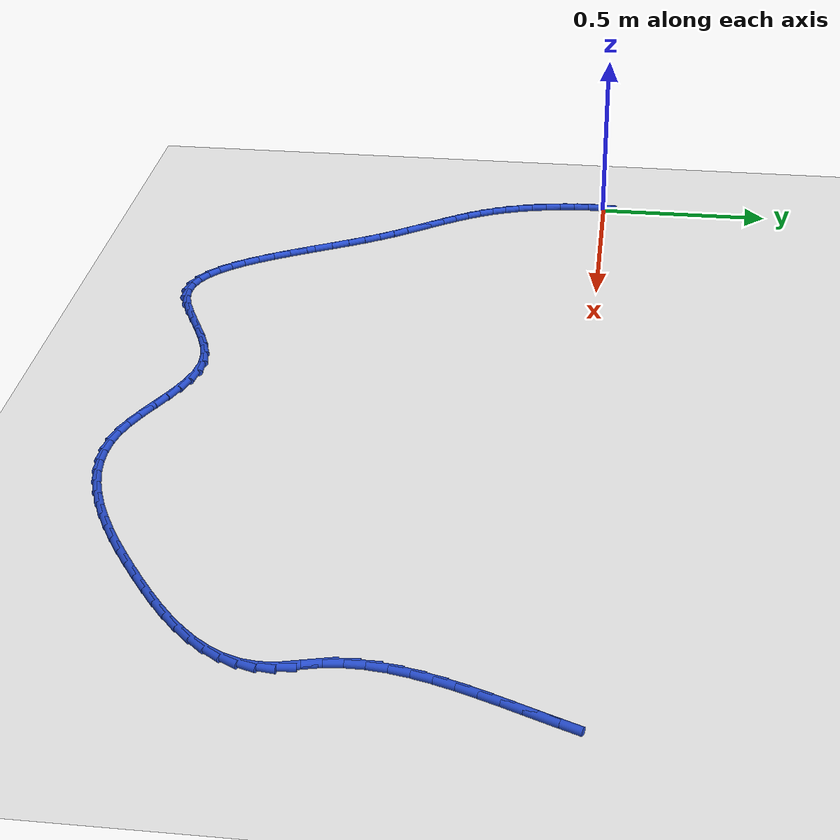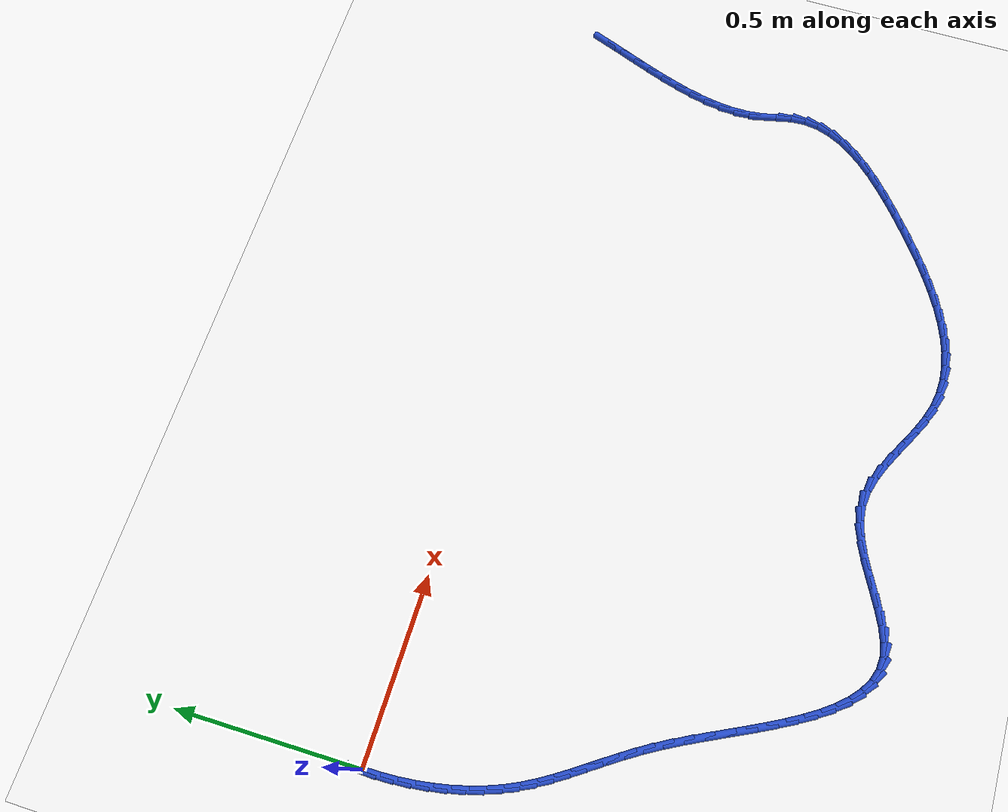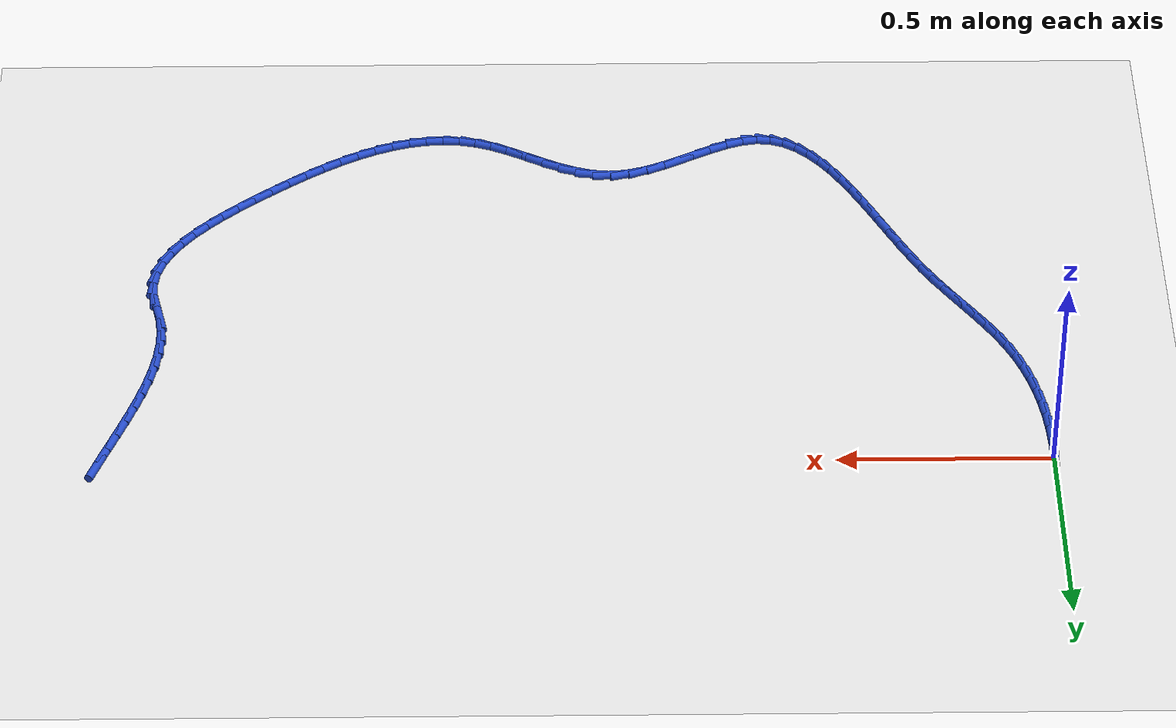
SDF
<sdf version="1.6">
 <world name="default">
  <model name="ground_plane">
   <static>1</static>
   <link name="link">
    <collision name="collision">
     <geometry><plane><normal>0 0 1</normal><size>100 100</size></plane></geometry>
     <surface><friction><ode><mu>100</mu><mu2>50</mu2></ode></friction></surface>
    </collision>
    <visual name="visual">
     <cast_shadows>0</cast_shadows>
     <geometry><plane><normal>0 0 1</normal><size>100 100</size></plane></geometry>
     <material>
      <script><uri>file://media/materials/scripts/gazebo.material</uri><name>Gazebo/WhiteGlow</name></script>
     </material>
    </visual>
   </link>
  </model>
  <model name="line">
   <link name="link_0">
    <pose>0.0 2.0816681711721685e-17 0.01 0 1.57 1.5274658303655457</pose>
    <collision name="collision">
     <geometry><cylinder><radius>0.01</radius><length>0.08</length></cylinder></geometry>
    </collision>
    <visual name="visual">
     <material>
      <script><name>Gazebo/Blue</name><uri>file://media/materials/scripts/gazebo.material</uri></script>
     </material>
     <geometry><cylinder><radius>0.01</radius><length>0.08</length></cylinder></geometry>
    </visual>
   </link>
   <link name="link_86">
    <pose>2.1878940913583556 0.016844669202280976 0.01 0 1.57 1.2175545746428462</pose>
    <collision name="collision">
     <geometry><cylinder><radius>0.01</radius><length>0.08</length></cylinder></geometry>
    </collision>
    <visual name="visual">
     <material>
      <script><name>Gazebo/Blue</name><uri>file://media/materials/scripts/gazebo.material</uri></script>
     </material>
     <geometry><cylinder><radius>0.01</radius><length>0.08</length></cylinder></geometry>
    </visual>
   </link>
   <link name="link_87">
    <pose>2.1707609281254885 -0.02962362020102635 0.01 0 1.57 1.2104600362849076</pose>
    <collision name="collision">
     <geometry><cylinder><radius>0.01</radius><length>0.08</length></cylinder></geometry>
    </collision>
    <visual name="visual">
     <material>
      <script><name>Gazebo/Blue</name><uri>file://media/materials/scripts/gazebo.material</uri></script>
     </material>
     <geometry><cylinder><radius>0.01</radius><length>0.08</length></cylinder></geometry>
    </visual>
   </link>
   <link name="link_88">
    <pose>2.1529974047702827 -0.07676837594295186 0.01 0 1.57 1.2138251250247771</pose>
    <collision name="collision">
     <geometry><cylinder><radius>0.01</radius><length>0.08</length></cylinder></geometry>
    </collision>
    <visual name="visual">
     <material>
      <script><name>Gazebo/Blue</name><uri>file://media/materials/scripts/gazebo.material</uri></script>
     </material>
     <geometry><cylinder><radius>0.01</radius><length>0.08</length></cylinder></geometry>
    </visual>
   </link>
   <link name="link_89">
    <pose>2.135234346931657 -0.1243970446275733 0.01 0 1.57 1.2274490820576407</pose>
    <collision name="collision">
     <geometry><cylinder><radius>0.01</radius><length>0.08</length></cylinder></geometry>
    </collision>
    <visual name="visual">
     <material>
      <script><name>Gazebo/Blue</name><uri>file://media/materials/scripts/gazebo.material</uri></script>
     </material>
     <geometry><cylinder><radius>0.01</radius><length>0.08</length></cylinder></geometry>
    </visual>
   </link>
   <link name="link_90">
    <pose>2.118102580248532 -0.17231707285896575 0.01 0 1.57 1.2516087291809224</pose>
    <collision name="collision">
     <geometry><cylinder><radius>0.01</radius><length>0.08</length></cylinder></geometry>
    </collision>
    <visual name="visual">
     <material>
      <script><name>Gazebo/Blue</name><uri>file://media/materials/scripts/gazebo.material</uri></script>
     </material>
     <geometry><cylinder><radius>0.01</radius><length>0.08</length></cylinder></geometry>
    </visual>
   </link>
   <link name="link_91">
    <pose>2.1022329303598264 -0.22033590724120697 0.01 0 1.57 1.2870299659423023</pose>
    <collision name="collision">
     <geometry><cylinder><radius>0.01</radius><length>0.08</length></cylinder></geometry>
    </collision>
    <visual name="visual">
     <material>
      <script><name>Gazebo/Blue</name><uri>file://media/materials/scripts/gazebo.material</uri></script>
     </material>
     <geometry><cylinder><radius>0.01</radius><length>0.08</length></cylinder></geometry>
    </visual>
   </link>
   <link name="link_92">
    <pose>2.0882562229044592 -0.2682609943783739 0.01 0 1.57 1.3348617528977287</pose>
    <collision name="collision">
     <geometry><cylinder><radius>0.01</radius><length>0.08</length></cylinder></geometry>
    </collision>
    <visual name="visual">
     <material>
      <script><name>Gazebo/Blue</name><uri>file://media/materials/scripts/gazebo.material</uri></script>
     </material>
     <geometry><cylinder><radius>0.01</radius><length>0.08</length></cylinder></geometry>
    </visual>
   </link>
   <link name="link_93">
    <pose>2.0768032835213512 -0.3158997808745435 0.01 0 1.57 1.3966176120207412</pose>
    <collision name="collision">
     <geometry><cylinder><radius>0.01</radius><length>0.08</length></cylinder></geometry>
    </collision>
    <visual name="visual">
     <material>
      <script><name>Gazebo/Blue</name><uri>file://media/materials/scripts/gazebo.material</uri></script>
     </material>
     <geometry><cylinder><radius>0.01</radius><length>0.08</length></cylinder></geometry>
    </visual>
   </link>
   <link name="link_94">
    <pose>2.0685049378494202 -0.36305971333379333 0.01 0 1.57 1.4740234205519736</pose>
    <collision name="collision">
     <geometry><cylinder><radius>0.01</radius><length>0.08</length></cylinder></geometry>
    </collision>
    <visual name="visual">
     <material>
      <script><name>Gazebo/Blue</name><uri>file://media/materials/scripts/gazebo.material</uri></script>
     </material>
     <geometry><cylinder><radius>0.01</radius><length>0.08</length></cylinder></geometry>
    </visual>
   </link>
   <link name="link_95">
    <pose>2.063992011527587 -0.40954823836019877 0.01 0 1.57 1.56867726681472</pose>
    <collision name="collision">
     <geometry><cylinder><radius>0.01</radius><length>0.08</length></cylinder></geometry>
    </collision>
    <visual name="visual">
     <material>
      <script><name>Gazebo/Blue</name><uri>file://media/materials/scripts/gazebo.material</uri></script>
     </material>
     <geometry><cylinder><radius>0.01</radius><length>0.08</length></cylinder></geometry>
    </visual>
   </link>
   <link name="link_96">
    <pose>2.06389533019477 -0.45517280255783726 0.01 0 1.57 -1.4601749284431613</pose>
    <collision name="collision">
     <geometry><cylinder><radius>0.01</radius><length>0.08</length></cylinder></geometry>
    </collision>
    <visual name="visual">
     <material>
      <script><name>Gazebo/Blue</name><uri>file://media/materials/scripts/gazebo.material</uri></script>
     </material>
     <geometry><cylinder><radius>0.01</radius><length>0.08</length></cylinder></geometry>
    </visual>
   </link>
   <link name="link_97">
    <pose>2.068845719489889 -0.4997408525307861 0.01 0 1.57 -1.348301010927385</pose>
    <collision name="collision">
     <geometry><cylinder><radius>0.01</radius><length>0.08</length></cylinder></geometry>
    </collision>
    <visual name="visual">
     <material>
      <script><name>Gazebo/Blue</name><uri>file://media/materials/scripts/gazebo.material</uri></script>
     </material>
     <geometry><cylinder><radius>0.01</radius><length>0.08</length></cylinder></geometry>
    </visual>
   </link>
   <link name="link_98">
    <pose>2.07865276173596 -0.5430886227081799 0.01 0 1.57 -1.3488371996784907</pose>
    <collision name="collision">
     <geometry><cylinder><radius>0.01</radius><length>0.08</length></cylinder></geometry>
    </collision>
    <visual name="visual">
     <material>
      <script><name>Gazebo/Blue</name><uri>file://media/materials/scripts/gazebo.material</uri></script>
     </material>
     <geometry><cylinder><radius>0.01</radius><length>0.08</length></cylinder></geometry>
    </visual>
   </link>
   <link name="link_99">
    <pose>2.088162294514961 -0.5852263463967969 0.01 0 1.57 -1.4999074798397725</pose>
    <collision name="collision">
     <geometry><cylinder><radius>0.01</radius><length>0.08</length></cylinder></geometry>
    </collision>
    <visual name="visual">
     <material>
      <script><name>Gazebo/Blue</name><uri>file://media/materials/scripts/gazebo.material</uri></script>
     </material>
     <geometry><cylinder><radius>0.01</radius><length>0.08</length></cylinder></geometry>
    </visual>
   </link>
   <link name="link_100">
    <pose>2.091073534431387 -0.6262252038764076 0.01 0 1.57 1.4457096455122642</pose>
    <collision name="collision">
     <geometry><cylinder><radius>0.01</radius><length>0.08</length></cylinder></geometry>
    </collision>
    <visual name="visual">
     <material>
      <script><name>Gazebo/Blue</name><uri>file://media/materials/scripts/gazebo.material</uri></script>
     </material>
     <geometry><cylinder><radius>0.01</radius><length>0.08</length></cylinder></geometry>
    </visual>
   </link>
   <link name="link_101">
    <pose>2.0860560599528886 -0.6661277590795777 0.01 0 1.57 1.2676593253867525</pose>
    <collision name="collision">
     <geometry><cylinder><radius>0.01</radius><length>0.08</length></cylinder></geometry>
    </collision>
    <visual name="visual">
     <material>
      <script><name>Gazebo/Blue</name><uri>file://media/materials/scripts/gazebo.material</uri></script>
     </material>
     <geometry><cylinder><radius>0.01</radius><length>0.08</length></cylinder></geometry>
    </visual>
   </link>
   <link name="link_102">
    <pose>2.073908899501143 -0.7049642755242198 0.01 0 1.57 1.116303509085837</pose>
    <collision name="collision">
     <geometry><cylinder><radius>0.01</radius><length>0.08</length></cylinder></geometry>
    </collision>
    <visual name="visual">
     <material>
      <script><name>Gazebo/Blue</name><uri>file://media/materials/scripts/gazebo.material</uri></script>
     </material>
     <geometry><cylinder><radius>0.01</radius><length>0.08</length></cylinder></geometry>
    </visual>
   </link>
   <link name="link_103">
    <pose>2.0554391650267876 -0.7427649700350821 0.01 0 1.57 0.9931156220685619</pose>
    <collision name="collision">
     <geometry><cylinder><radius>0.01</radius><length>0.08</length></cylinder></geometry>
    </collision>
    <visual name="visual">
     <material>
      <script><name>Gazebo/Blue</name><uri>file://media/materials/scripts/gazebo.material</uri></script>
     </material>
     <geometry><cylinder><radius>0.01</radius><length>0.08</length></cylinder></geometry>
    </visual>
   </link>
   <link name="link_104">
    <pose>2.0314539684804602 -0.7795600594369133 0.01 0 1.57 0.8954124910767526</pose>
    <collision name="collision">
     <geometry><cylinder><radius>0.01</radius><length>0.08</length></cylinder></geometry>
    </collision>
    <visual name="visual">
     <material>
      <script><name>Gazebo/Blue</name><uri>file://media/materials/scripts/gazebo.material</uri></script>
     </material>
     <geometry><cylinder><radius>0.01</radius><length>0.08</length></cylinder></geometry>
    </visual>
   </link>
   <link name="link_105">
    <pose>2.0027604218127992 -0.8153797605544596 0.01 0 1.57 0.8191746708348254</pose>
    <collision name="collision">
     <geometry><cylinder><radius>0.01</radius><length>0.08</length></cylinder></geometry>
    </collision>
    <visual name="visual">
     <material>
      <script><name>Gazebo/Blue</name><uri>file://media/materials/scripts/gazebo.material</uri></script>
     </material>
     <geometry><cylinder><radius>0.01</radius><length>0.08</length></cylinder></geometry>
    </visual>
   </link>
   <link name="link_106">
    <pose>1.97016563697444 -0.8502542902124693 0.01 0 1.57 0.7605737790727566</pose>
    <collision name="collision">
     <geometry><cylinder><radius>0.01</radius><length>0.08</length></cylinder></geometry>
    </collision>
    <visual name="visual">
     <material>
      <script><name>Gazebo/Blue</name><uri>file://media/materials/scripts/gazebo.material</uri></script>
     </material>
     <geometry><cylinder><radius>0.01</radius><length>0.08</length></cylinder></geometry>
    </visual>
   </link>
   <link name="link_107">
    <pose>1.934476725916023 -0.884213865235691 0.01 0 1.57 0.7165271686547003</pose>
    <collision name="collision">
     <geometry><cylinder><radius>0.01</radius><length>0.08</length></cylinder></geometry>
    </collision>
    <visual name="visual">
     <material>
      <script><name>Gazebo/Blue</name><uri>file://media/materials/scripts/gazebo.material</uri></script>
     </material>
     <geometry><cylinder><radius>0.01</radius><length>0.08</length></cylinder></geometry>
    </visual>
   </link>
   <link name="link_108">
    <pose>1.8965008005881843 -0.9172887024488723 0.01 0 1.57 0.6847917029312157</pose>
    <collision name="collision">
     <geometry><cylinder><radius>0.01</radius><length>0.08</length></cylinder></geometry>
    </collision>
    <visual name="visual">
     <material>
      <script><name>Gazebo/Blue</name><uri>file://media/materials/scripts/gazebo.material</uri></script>
     </material>
     <geometry><cylinder><radius>0.01</radius><length>0.08</length></cylinder></geometry>
    </visual>
   </link>
   <link name="link_109">
    <pose>1.8570449729415608 -0.9495090186767607 0.01 0 1.57 0.6634919876065627</pose>
    <collision name="collision">
     <geometry><cylinder><radius>0.01</radius><length>0.08</length></cylinder></geometry>
    </collision>
    <visual name="visual">
     <material>
      <script><name>Gazebo/Blue</name><uri>file://media/materials/scripts/gazebo.material</uri></script>
     </material>
     <geometry><cylinder><radius>0.01</radius><length>0.08</length></cylinder></geometry>
    </visual>
   </link>
   <link name="link_110">
    <pose>1.816896556013063 -0.9808936580284912 0.01 0 1.57 0.6438072851552383</pose>
    <collision name="collision">
     <geometry><cylinder><radius>0.01</radius><length>0.08</length></cylinder></geometry>
    </collision>
    <visual name="visual">
     <material>
      <script><name>Gazebo/Blue</name><uri>file://media/materials/scripts/gazebo.material</uri></script>
     </material>
     <geometry><cylinder><radius>0.01</radius><length>0.08</length></cylinder></geometry>
    </visual>
   </link>
   <link name="link_111">
    <pose>1.776459154949352 -1.0112410585457374 0.01 0 1.57 0.6179431095851337</pose>
    <collision name="collision">
     <geometry><cylinder><radius>0.01</radius><length>0.08</length></cylinder></geometry>
    </collision>
    <visual name="visual">
     <material>
      <script><name>Gazebo/Blue</name><uri>file://media/materials/scripts/gazebo.material</uri></script>
     </material>
     <geometry><cylinder><radius>0.01</radius><length>0.08</length></cylinder></geometry>
    </visual>
   </link>
   <link name="link_112">
    <pose>1.7357887055009056 -1.040149953113374 0.01 0 1.57 0.5849774564189903</pose>
    <collision name="collision">
     <geometry><cylinder><radius>0.01</radius><length>0.08</length></cylinder></geometry>
    </collision>
    <visual name="visual">
     <material>
      <script><name>Gazebo/Blue</name><uri>file://media/materials/scripts/gazebo.material</uri></script>
     </material>
     <geometry><cylinder><radius>0.01</radius><length>0.08</length></cylinder></geometry>
    </visual>
   </link>
   <link name="link_113">
    <pose>1.6949285741900249 -1.0672118547122182 0.01 0 1.57 0.5440436127705319</pose>
    <collision name="collision">
     <geometry><cylinder><radius>0.01</radius><length>0.08</length></cylinder></geometry>
    </collision>
    <visual name="visual">
     <material>
      <script><name>Gazebo/Blue</name><uri>file://media/materials/scripts/gazebo.material</uri></script>
     </material>
     <geometry><cylinder><radius>0.01</radius><length>0.08</length></cylinder></geometry>
    </visual>
   </link>
   <link name="link_114">
    <pose>1.6539221275390137 -1.0920182763230881 0.01 0 1.57 0.4940663169200732</pose>
    <collision name="collision">
     <geometry><cylinder><radius>0.01</radius><length>0.08</length></cylinder></geometry>
    </collision>
    <visual name="visual">
     <material>
      <script><name>Gazebo/Blue</name><uri>file://media/materials/scripts/gazebo.material</uri></script>
     </material>
     <geometry><cylinder><radius>0.01</radius><length>0.08</length></cylinder></geometry>
    </visual>
   </link>
   <link name="link_115">
    <pose>1.6128127320701733 -1.114160730926802 0.01 0 1.57 0.4337872664785933</pose>
    <collision name="collision">
     <geometry><cylinder><radius>0.01</radius><length>0.08</length></cylinder></geometry>
    </collision>
    <visual name="visual">
     <material>
      <script><name>Gazebo/Blue</name><uri>file://media/materials/scripts/gazebo.material</uri></script>
     </material>
     <geometry><cylinder><radius>0.01</radius><length>0.08</length></cylinder></geometry>
    </visual>
   </link>
   <link name="link_116">
    <pose>1.5716437543058088 -1.133230731504177 0.01 0 1.57 0.36184547667770317</pose>
    <collision name="collision">
     <geometry><cylinder><radius>0.01</radius><length>0.08</length></cylinder></geometry>
    </collision>
    <visual name="visual">
     <material>
      <script><name>Gazebo/Blue</name><uri>file://media/materials/scripts/gazebo.material</uri></script>
     </material>
     <geometry><cylinder><radius>0.01</radius><length>0.08</length></cylinder></geometry>
    </visual>
   </link>
   <link name="link_117">
    <pose>1.5304585607682213 -1.148819791036031 0.01 0 1.57 0.27695565393639066</pose>
    <collision name="collision">
     <geometry><cylinder><radius>0.01</radius><length>0.08</length></cylinder></geometry>
    </collision>
    <visual name="visual">
     <material>
      <script><name>Gazebo/Blue</name><uri>file://media/materials/scripts/gazebo.material</uri></script>
     </material>
     <geometry><cylinder><radius>0.01</radius><length>0.08</length></cylinder></geometry>
    </visual>
   </link>
   <link name="link_118">
    <pose>1.489300517979714 -1.1605194225031819 0.01 0 1.57 0.17823348074436687</pose>
    <collision name="collision">
     <geometry><cylinder><radius>0.01</radius><length>0.08</length></cylinder></geometry>
    </collision>
    <visual name="visual">
     <material>
      <script><name>Gazebo/Blue</name><uri>file://media/materials/scripts/gazebo.material</uri></script>
     </material>
     <geometry><cylinder><radius>0.01</radius><length>0.08</length></cylinder></geometry>
    </visual>
   </link>
   <link name="link_119">
    <pose>1.4482129924625893 -1.1679211388864477 0.01 0 1.57 0.0656870242449005</pose>
    <collision name="collision">
     <geometry><cylinder><radius>0.01</radius><length>0.08</length></cylinder></geometry>
    </collision>
    <visual name="visual">
     <material>
      <script><name>Gazebo/Blue</name><uri>file://media/materials/scripts/gazebo.material</uri></script>
     </material>
     <geometry><cylinder><radius>0.01</radius><length>0.08</length></cylinder></geometry>
    </visual>
   </link>
   <link name="link_120">
    <pose>1.4072393507391499 -1.1706164531666465 0.01 0 1.57 -0.059210198258510864</pose>
    <collision name="collision">
     <geometry><cylinder><radius>0.01</radius><length>0.08</length></cylinder></geometry>
    </collision>
    <visual name="visual">
     <material>
      <script><name>Gazebo/Blue</name><uri>file://media/materials/scripts/gazebo.material</uri></script>
     </material>
     <geometry><cylinder><radius>0.01</radius><length>0.08</length></cylinder></geometry>
    </visual>
   </link>
   <link name="link_121">
    <pose>1.3664229593316986 -1.1681968783245957 0.01 0 1.57 -0.19312579210776934</pose>
    <collision name="collision">
     <geometry><cylinder><radius>0.01</radius><length>0.08</length></cylinder></geometry>
    </collision>
    <visual name="visual">
     <material>
      <script><name>Gazebo/Blue</name><uri>file://media/materials/scripts/gazebo.material</uri></script>
     </material>
     <geometry><cylinder><radius>0.01</radius><length>0.08</length></cylinder></geometry>
    </visual>
   </link>
   <link name="link_122">
    <pose>1.325807184762538 -1.1602539273411128 0.01 0 1.57 -0.3272488652530437</pose>
    <collision name="collision">
     <geometry><cylinder><radius>0.01</radius><length>0.08</length></cylinder></geometry>
    </collision>
    <visual name="visual">
     <material>
      <script><name>Gazebo/Blue</name><uri>file://media/materials/scripts/gazebo.material</uri></script>
     </material>
     <geometry><cylinder><radius>0.01</radius><length>0.08</length></cylinder></geometry>
    </visual>
   </link>
   <link name="link_123">
    <pose>1.285424207347114 -1.1465457703125803 0.01 0 1.57 -0.4265017811243615</pose>
    <collision name="collision">
     <geometry><cylinder><radius>0.01</radius><length>0.08</length></cylinder></geometry>
    </collision>
    <visual name="visual">
     <material>
      <script><name>Gazebo/Blue</name><uri>file://media/materials/scripts/gazebo.material</uri></script>
     </material>
     <geometry><cylinder><radius>0.01</radius><length>0.08</length></cylinder></geometry>
    </visual>
   </link>
   <link name="link_124">
    <pose>1.2452094289998552 -1.128272425261811 0.01 0 1.57 -0.47983649579975934</pose>
    <collision name="collision">
     <geometry><cylinder><radius>0.01</radius><length>0.08</length></cylinder></geometry>
    </collision>
    <visual name="visual">
     <material>
      <script><name>Gazebo/Blue</name><uri>file://media/materials/scripts/gazebo.material</uri></script>
     </material>
     <geometry><cylinder><radius>0.01</radius><length>0.08</length></cylinder></geometry>
    </visual>
   </link>
   <link name="link_125">
    <pose>1.2050486671138927 -1.1073726425988715 0.01 0 1.57 -0.4924721724010246</pose>
    <collision name="collision">
     <geometry><cylinder><radius>0.01</radius><length>0.08</length></cylinder></geometry>
    </collision>
    <visual name="visual">
     <material>
      <script><name>Gazebo/Blue</name><uri>file://media/materials/scripts/gazebo.material</uri></script>
     </material>
     <geometry><cylinder><radius>0.01</radius><length>0.08</length></cylinder></geometry>
    </visual>
   </link>
   <link name="link_126">
    <pose>1.1648273365794066 -1.0857911694028972 0.01 0 1.57 -0.4660246761694728</pose>
    <collision name="collision">
     <geometry><cylinder><radius>0.01</radius><length>0.08</length></cylinder></geometry>
    </collision>
    <visual name="visual">
     <material>
      <script><name>Gazebo/Blue</name><uri>file://media/materials/scripts/gazebo.material</uri></script>
     </material>
     <geometry><cylinder><radius>0.01</radius><length>0.08</length></cylinder></geometry>
    </visual>
   </link>
   <link name="link_127">
    <pose>1.1244308522865796 -1.065472752753026 0.01 0 1.57 -0.39809588458946316</pose>
    <collision name="collision">
     <geometry><cylinder><radius>0.01</radius><length>0.08</length></cylinder></geometry>
    </collision>
    <visual name="visual">
     <material>
      <script><name>Gazebo/Blue</name><uri>file://media/materials/scripts/gazebo.material</uri></script>
     </material>
     <geometry><cylinder><radius>0.01</radius><length>0.08</length></cylinder></geometry>
    </visual>
   </link>
   <link name="link_128">
    <pose>1.0837446291255914 -1.0483621397283944 0.01 0 1.57 -0.28319559865668814</pose>
    <collision name="collision">
     <geometry><cylinder><radius>0.01</radius><length>0.08</length></cylinder></geometry>
    </collision>
    <visual name="visual">
     <material>
      <script><name>Gazebo/Blue</name><uri>file://media/materials/scripts/gazebo.material</uri></script>
     </material>
     <geometry><cylinder><radius>0.01</radius><length>0.08</length></cylinder></geometry>
    </visual>
   </link>
   <link name="link_129">
    <pose>1.0426540819866235 -1.0364040774081387 0.01 0 1.57 -0.11629166232842947</pose>
    <collision name="collision">
     <geometry><cylinder><radius>0.01</radius><length>0.08</length></cylinder></geometry>
    </collision>
    <visual name="visual">
     <material>
      <script><name>Gazebo/Blue</name><uri>file://media/materials/scripts/gazebo.material</uri></script>
     </material>
     <geometry><cylinder><radius>0.01</radius><length>0.08</length></cylinder></geometry>
    </visual>
   </link>
   <link name="link_130">
    <pose>1.0010446257598562 -1.0315433128713956 0.01 0 1.57 0.09120358449086256</pose>
    <collision name="collision">
     <geometry><cylinder><radius>0.01</radius><length>0.08</length></cylinder></geometry>
    </collision>
    <visual name="visual">
     <material>
      <script><name>Gazebo/Blue</name><uri>file://media/materials/scripts/gazebo.material</uri></script>
     </material>
     <geometry><cylinder><radius>0.01</radius><length>0.08</length></cylinder></geometry>
    </visual>
   </link>
   <link name="link_131">
    <pose>0.9588364150460018 -1.035403562229004 0.01 0 1.57 0.2669572309169607</pose>
    <collision name="collision">
     <geometry><cylinder><radius>0.01</radius><length>0.08</length></cylinder></geometry>
    </collision>
    <visual name="visual">
     <material>
      <script><name>Gazebo/Blue</name><uri>file://media/materials/scripts/gazebo.material</uri></script>
     </material>
     <geometry><cylinder><radius>0.01</radius><length>0.08</length></cylinder></geometry>
    </visual>
   </link>
   <link name="link_132">
    <pose>0.9162257196678878 -1.0470569504656873 0.01 0 1.57 0.3850818855334979</pose>
    <collision name="collision">
     <geometry><cylinder><radius>0.01</radius><length>0.08</length></cylinder></geometry>
    </collision>
    <visual name="visual">
     <material>
      <script><name>Gazebo/Blue</name><uri>file://media/materials/scripts/gazebo.material</uri></script>
     </material>
     <geometry><cylinder><radius>0.01</radius><length>0.08</length></cylinder></geometry>
    </visual>
   </link>
   <link name="link_133">
    <pose>0.873540571785871 -1.0643579818619358 0.01 0 1.57 0.45570286756225437</pose>
    <collision name="collision">
     <geometry><cylinder><radius>0.01</radius><length>0.08</length></cylinder></geometry>
    </collision>
    <visual name="visual">
     <material>
      <script><name>Gazebo/Blue</name><uri>file://media/materials/scripts/gazebo.material</uri></script>
     </material>
     <geometry><cylinder><radius>0.01</radius><length>0.08</length></cylinder></geometry>
    </visual>
   </link>
   <link name="link_134">
    <pose>0.8311098173074651 -1.0851536408302334 0.01 0 1.57 0.4865763498105265</pose>
    <collision name="collision">
     <geometry><cylinder><radius>0.01</radius><length>0.08</length></cylinder></geometry>
    </collision>
    <visual name="visual">
     <material>
      <script><name>Gazebo/Blue</name><uri>file://media/materials/scripts/gazebo.material</uri></script>
     </material>
     <geometry><cylinder><radius>0.01</radius><length>0.08</length></cylinder></geometry>
    </visual>
   </link>
   <link name="link_135">
    <pose>0.7892623021401847 -1.1072909117830618 0.01 0 1.57 0.4802774632417235</pose>
    <collision name="collision">
     <geometry><cylinder><radius>0.01</radius><length>0.08</length></cylinder></geometry>
    </collision>
    <visual name="visual">
     <material>
      <script><name>Gazebo/Blue</name><uri>file://media/materials/scripts/gazebo.material</uri></script>
     </material>
     <geometry><cylinder><radius>0.01</radius><length>0.08</length></cylinder></geometry>
    </visual>
   </link>
   <link name="link_136">
    <pose>0.7483268721915428 -1.1286167791329045 0.01 0 1.57 0.43325708155753523</pose>
    <collision name="collision">
     <geometry><cylinder><radius>0.01</radius><length>0.08</length></cylinder></geometry>
    </collision>
    <visual name="visual">
     <material>
      <script><name>Gazebo/Blue</name><uri>file://media/materials/scripts/gazebo.material</uri></script>
     </material>
     <geometry><cylinder><radius>0.01</radius><length>0.08</length></cylinder></geometry>
    </visual>
   </link>
   <link name="link_137">
    <pose>0.7086323733690554 -1.1469782272922444 0.01 0 1.57 0.33434463300403083</pose>
    <collision name="collision">
     <geometry><cylinder><radius>0.01</radius><length>0.08</length></cylinder></geometry>
    </collision>
    <visual name="visual">
     <material>
      <script><name>Gazebo/Blue</name><uri>file://media/materials/scripts/gazebo.material</uri></script>
     </material>
     <geometry><cylinder><radius>0.01</radius><length>0.08</length></cylinder></geometry>
    </visual>
   </link>
   <link name="link_138">
    <pose>0.6705076515802356 -1.1602222406735638 0.01 0 1.57 0.16343058468643268</pose>
    <collision name="collision">
     <geometry><cylinder><radius>0.01</radius><length>0.08</length></cylinder></geometry>
    </collision>
    <visual name="visual">
     <material>
      <script><name>Gazebo/Blue</name><uri>file://media/materials/scripts/gazebo.material</uri></script>
     </material>
     <geometry><cylinder><radius>0.01</radius><length>0.08</length></cylinder></geometry>
    </visual>
   </link>
   <link name="link_139">
    <pose>0.6342815219658705 -1.1661959784572653 0.01 0 1.57 -0.08290927956844821</pose>
    <collision name="collision">
     <geometry><cylinder><radius>0.01</radius><length>0.08</length></cylinder></geometry>
    </collision>
    <visual name="visual">
     <material>
      <script><name>Gazebo/Blue</name><uri>file://media/materials/scripts/gazebo.material</uri></script>
     </material>
     <geometry><cylinder><radius>0.01</radius><length>0.08</length></cylinder></geometry>
    </visual>
   </link>
   <link name="link_140">
    <pose>0.600174516440658 -1.1633616939809384 0.01 0 1.57 -0.33512647677560226</pose>
    <collision name="collision">
     <geometry><cylinder><radius>0.01</radius><length>0.08</length></cylinder></geometry>
    </collision>
    <visual name="visual">
     <material>
      <script><name>Gazebo/Blue</name><uri>file://media/materials/scripts/gazebo.material</uri></script>
     </material>
     <geometry><cylinder><radius>0.01</radius><length>0.08</length></cylinder></geometry>
    </visual>
   </link>
   <link name="link_141">
    <pose>0.5680560680975628 -1.1521760292021064 0.01 0 1.57 -0.5519268064042884</pose>
    <collision name="collision">
     <geometry><cylinder><radius>0.01</radius><length>0.08</length></cylinder></geometry>
    </collision>
    <visual name="visual">
     <material>
      <script><name>Gazebo/Blue</name><uri>file://media/materials/scripts/gazebo.material</uri></script>
     </material>
     <geometry><cylinder><radius>0.01</radius><length>0.08</length></cylinder></geometry>
    </visual>
   </link>
   <link name="link_142">
    <pose>0.5377245764117692 -1.133499126831256 0.01 0 1.57 -0.7218782651502196</pose>
    <collision name="collision">
     <geometry><cylinder><radius>0.01</radius><length>0.08</length></cylinder></geometry>
    </collision>
    <visual name="visual">
     <material>
      <script><name>Gazebo/Blue</name><uri>file://media/materials/scripts/gazebo.material</uri></script>
     </material>
     <geometry><cylinder><radius>0.01</radius><length>0.08</length></cylinder></geometry>
    </visual>
   </link>
   <link name="link_143">
    <pose>0.5089784408584637 -1.1081911295788753 0.01 0 1.57 -0.8489075209402129</pose>
    <collision name="collision">
     <geometry><cylinder><radius>0.01</radius><length>0.08</length></cylinder></geometry>
    </collision>
    <visual name="visual">
     <material>
      <script><name>Gazebo/Blue</name><uri>file://media/materials/scripts/gazebo.material</uri></script>
     </material>
     <geometry><cylinder><radius>0.01</radius><length>0.08</length></cylinder></geometry>
    </visual>
   </link>
   <link name="link_144">
    <pose>0.4816160609128302 -1.077112180155451 0.01 0 1.57 -0.9418936479831789</pose>
    <collision name="collision">
     <geometry><cylinder><radius>0.01</radius><length>0.08</length></cylinder></geometry>
    </collision>
    <visual name="visual">
     <material>
      <script><name>Gazebo/Blue</name><uri>file://media/materials/scripts/gazebo.material</uri></script>
     </material>
     <geometry><cylinder><radius>0.01</radius><length>0.08</length></cylinder></geometry>
    </visual>
   </link>
   <link name="link_145">
    <pose>0.455435836050054 -1.0411224212714705 0.01 0 1.57 -1.0090709489143146</pose>
    <collision name="collision">
     <geometry><cylinder><radius>0.01</radius><length>0.08</length></cylinder></geometry>
    </collision>
    <visual name="visual">
     <material>
      <script><name>Gazebo/Blue</name><uri>file://media/materials/scripts/gazebo.material</uri></script>
     </material>
     <geometry><cylinder><radius>0.01</radius><length>0.08</length></cylinder></geometry>
    </visual>
   </link>
   <link name="link_146">
    <pose>0.4302361657453198 -1.0010819956374202 0.01 0 1.57 -1.0565934328451478</pose>
    <collision name="collision">
     <geometry><cylinder><radius>0.01</radius><length>0.08</length></cylinder></geometry>
    </collision>
    <visual name="visual">
     <material>
      <script><name>Gazebo/Blue</name><uri>file://media/materials/scripts/gazebo.material</uri></script>
     </material>
     <geometry><cylinder><radius>0.01</radius><length>0.08</length></cylinder></geometry>
    </visual>
   </link>
   <link name="link_147">
    <pose>0.4058154494738122 -0.9578510459637871 0.01 0 1.57 -1.0886636702165375</pose>
    <collision name="collision">
     <geometry><cylinder><radius>0.01</radius><length>0.08</length></cylinder></geometry>
    </collision>
    <visual name="visual">
     <material>
      <script><name>Gazebo/Blue</name><uri>file://media/materials/scripts/gazebo.material</uri></script>
     </material>
     <geometry><cylinder><radius>0.01</radius><length>0.08</length></cylinder></geometry>
    </visual>
   </link>
   <link name="link_148">
    <pose>0.3819720867107171 -0.9122897149610598 0.01 0 1.57 -1.1079685036080702</pose>
    <collision name="collision">
     <geometry><cylinder><radius>0.01</radius><length>0.08</length></cylinder></geometry>
    </collision>
    <visual name="visual">
     <material>
      <script><name>Gazebo/Blue</name><uri>file://media/materials/scripts/gazebo.material</uri></script>
     </material>
     <geometry><cylinder><radius>0.01</radius><length>0.08</length></cylinder></geometry>
    </visual>
   </link>
   <link name="link_149">
    <pose>0.3585044769312189 -0.8652581453397247 0.01 0 1.57 -1.1160435705351148</pose>
    <collision name="collision">
     <geometry><cylinder><radius>0.01</radius><length>0.08</length></cylinder></geometry>
    </collision>
    <visual name="visual">
     <material>
      <script><name>Gazebo/Blue</name><uri>file://media/materials/scripts/gazebo.material</uri></script>
     </material>
     <geometry><cylinder><radius>0.01</radius><length>0.08</length></cylinder></geometry>
    </visual>
   </link>
   <link name="link_150">
    <pose>0.33521101961050237 -0.8176164798102684 0.01 0 1.57 -1.1134973340396803</pose>
    <collision name="collision">
     <geometry><cylinder><radius>0.01</radius><length>0.08</length></cylinder></geometry>
    </collision>
    <visual name="visual">
     <material>
      <script><name>Gazebo/Blue</name><uri>file://media/materials/scripts/gazebo.material</uri></script>
     </material>
     <geometry><cylinder><radius>0.01</radius><length>0.08</length></cylinder></geometry>
    </visual>
   </link>
   <link name="link_151">
    <pose>0.3118901142237528 -0.7702248610831789 0.01 0 1.57 -1.1000998386211622</pose>
    <collision name="collision">
     <geometry><cylinder><radius>0.01</radius><length>0.08</length></cylinder></geometry>
    </collision>
    <visual name="visual">
     <material>
      <script><name>Gazebo/Blue</name><uri>file://media/materials/scripts/gazebo.material</uri></script>
     </material>
     <geometry><cylinder><radius>0.01</radius><length>0.08</length></cylinder></geometry>
    </visual>
   </link>
   <link name="link_152">
    <pose>0.28834016024615494 -0.7239434318689426 0.01 0 1.57 -1.0747442695563916</pose>
    <collision name="collision">
     <geometry><cylinder><radius>0.01</radius><length>0.08</length></cylinder></geometry>
    </collision>
    <visual name="visual">
     <material>
      <script><name>Gazebo/Blue</name><uri>file://media/materials/scripts/gazebo.material</uri></script>
     </material>
     <geometry><cylinder><radius>0.01</radius><length>0.08</length></cylinder></geometry>
    </visual>
   </link>
   <link name="link_153">
    <pose>0.26435955715289333 -0.6796323348780463 0.01 0 1.57 -1.0379458323578534</pose>
    <collision name="collision">
     <geometry><cylinder><radius>0.01</radius><length>0.08</length></cylinder></geometry>
    </collision>
    <visual name="visual">
     <material>
      <script><name>Gazebo/Blue</name><uri>file://media/materials/scripts/gazebo.material</uri></script>
     </material>
     <geometry><cylinder><radius>0.01</radius><length>0.08</length></cylinder></geometry>
    </visual>
   </link>
   <link name="link_154">
    <pose>0.23980584767689353 -0.6379984126685174 0.01 0 1.57 -1.0045367504589335</pose>
    <collision name="collision">
     <geometry><cylinder><radius>0.01</radius><length>0.08</length></cylinder></geometry>
    </collision>
    <visual name="visual">
     <material>
      <script><name>Gazebo/Blue</name><uri>file://media/materials/scripts/gazebo.material</uri></script>
     </material>
     <geometry><cylinder><radius>0.01</radius><length>0.08</length></cylinder></geometry>
    </visual>
   </link>
   <link name="link_155">
    <pose>0.2148967497956038 -0.5988149285197228 0.01 0 1.57 -0.982106653112549</pose>
    <collision name="collision">
     <geometry><cylinder><radius>0.01</radius><length>0.08</length></cylinder></geometry>
    </collision>
    <visual name="visual">
     <material>
      <script><name>Gazebo/Blue</name><uri>file://media/materials/scripts/gazebo.material</uri></script>
     </material>
     <geometry><cylinder><radius>0.01</radius><length>0.08</length></cylinder></geometry>
    </visual>
   </link>
   <link name="link_156">
    <pose>0.18998556283688714 -0.5615037169517144 0.01 0 1.57 -0.9723361419952583</pose>
    <collision name="collision">
     <geometry><cylinder><radius>0.01</radius><length>0.08</length></cylinder></geometry>
    </collision>
    <visual name="visual">
     <material>
      <script><name>Gazebo/Blue</name><uri>file://media/materials/scripts/gazebo.material</uri></script>
     </material>
     <geometry><cylinder><radius>0.01</radius><length>0.08</length></cylinder></geometry>
    </visual>
   </link>
   <link name="link_157">
    <pose>0.1654258323527058 -0.5254859742682296 0.01 0 1.57 -0.9765573859472686</pose>
    <collision name="collision">
     <geometry><cylinder><radius>0.01</radius><length>0.08</length></cylinder></geometry>
    </collision>
    <visual name="visual">
     <material>
      <script><name>Gazebo/Blue</name><uri>file://media/materials/scripts/gazebo.material</uri></script>
     </material>
     <geometry><cylinder><radius>0.01</radius><length>0.08</length></cylinder></geometry>
    </visual>
   </link>
   <link name="link_158">
    <pose>0.14157110389502145 -0.4901828967730057 0.01 0 1.57 -0.9956716778445739</pose>
    <collision name="collision">
     <geometry><cylinder><radius>0.01</radius><length>0.08</length></cylinder></geometry>
    </collision>
    <visual name="visual">
     <material>
      <script><name>Gazebo/Blue</name><uri>file://media/materials/scripts/gazebo.material</uri></script>
     </material>
     <geometry><cylinder><radius>0.01</radius><length>0.08</length></cylinder></geometry>
    </visual>
   </link>
   <link name="link_159">
    <pose>0.11877492301579723 -0.4550156807697817 0.01 0 1.57 -1.0300053856369116</pose>
    <collision name="collision">
     <geometry><cylinder><radius>0.01</radius><length>0.08</length></cylinder></geometry>
    </collision>
    <visual name="visual">
     <material>
      <script><name>Gazebo/Blue</name><uri>file://media/materials/scripts/gazebo.material</uri></script>
     </material>
     <geometry><cylinder><radius>0.01</radius><length>0.08</length></cylinder></geometry>
    </visual>
   </link>
   <link name="link_160">
    <pose>0.09739083526699485 -0.419405522562295 0.01 0 1.57 -1.079109871590299</pose>
    <collision name="collision">
     <geometry><cylinder><radius>0.01</radius><length>0.08</length></cylinder></geometry>
    </collision>
    <visual name="visual">
     <material>
      <script><name>Gazebo/Blue</name><uri>file://media/materials/scripts/gazebo.material</uri></script>
     </material>
     <geometry><cylinder><radius>0.01</radius><length>0.08</length></cylinder></geometry>
    </visual>
   </link>
   <link name="link_161">
    <pose>0.07777238620057655 -0.38277361845428326 0.01 0 1.57 -1.141322546151897</pose>
    <collision name="collision">
     <geometry><cylinder><radius>0.01</radius><length>0.08</length></cylinder></geometry>
    </collision>
    <visual name="visual">
     <material>
      <script><name>Gazebo/Blue</name><uri>file://media/materials/scripts/gazebo.material</uri></script>
     </material>
     <geometry><cylinder><radius>0.01</radius><length>0.08</length></cylinder></geometry>
    </visual>
   </link>
   <link name="link_162">
    <pose>0.060267921688589784 -0.34455295146366766 0.01 0 1.57 -1.2073191959611445</pose>
    <collision name="collision">
     <geometry><cylinder><radius>0.01</radius><length>0.08</length></cylinder></geometry>
    </collision>
    <visual name="visual">
     <material>
      <script><name>Gazebo/Blue</name><uri>file://media/materials/scripts/gazebo.material</uri></script>
     </material>
     <geometry><cylinder><radius>0.01</radius><length>0.08</length></cylinder></geometry>
    </visual>
   </link>
   <link name="link_163">
    <pose>0.04505600798654899 -0.30456136364720926 0.01 0 1.57 -1.268335643875404</pose>
    <collision name="collision">
     <geometry><cylinder><radius>0.01</radius><length>0.08</length></cylinder></geometry>
    </collision>
    <visual name="visual">
     <material>
      <script><name>Gazebo/Blue</name><uri>file://media/materials/scripts/gazebo.material</uri></script>
     </material>
     <geometry><cylinder><radius>0.01</radius><length>0.08</length></cylinder></geometry>
    </visual>
   </link>
   <link name="link_164">
    <pose>0.03211174422114629 -0.26307791947007086 0.01 0 1.57 -1.3247974017664224</pose>
    <collision name="collision">
     <geometry><cylinder><radius>0.01</radius><length>0.08</length></cylinder></geometry>
    </collision>
    <visual name="visual">
     <material>
      <script><name>Gazebo/Blue</name><uri>file://media/materials/scripts/gazebo.material</uri></script>
     </material>
     <geometry><cylinder><radius>0.01</radius><length>0.08</length></cylinder></geometry>
    </visual>
   </link>
   <link name="link_165">
    <pose>0.02139822306562918 -0.22040889981023493 0.01 0 1.57 -1.3775989197087242</pose>
    <collision name="collision">
     <geometry><cylinder><radius>0.01</radius><length>0.08</length></cylinder></geometry>
    </collision>
    <visual name="visual">
     <material>
      <script><name>Gazebo/Blue</name><uri>file://media/materials/scripts/gazebo.material</uri></script>
     </material>
     <geometry><cylinder><radius>0.01</radius><length>0.08</length></cylinder></geometry>
    </visual>
   </link>
   <link name="link_166">
    <pose>0.012878537193245436 -0.1768605855456845 0.01 0 1.57 -1.427573253180215</pose>
    <collision name="collision">
     <geometry><cylinder><radius>0.01</radius><length>0.08</length></cylinder></geometry>
    </collision>
    <visual name="visual">
     <material>
      <script><name>Gazebo/Blue</name><uri>file://media/materials/scripts/gazebo.material</uri></script>
     </material>
     <geometry><cylinder><radius>0.01</radius><length>0.08</length></cylinder></geometry>
    </visual>
   </link>
   <link name="link_167">
    <pose>0.006515779277242858 -0.1327392575544028 0.01 0 1.57 -1.4755029774068171</pose>
    <collision name="collision">
     <geometry><cylinder><radius>0.01</radius><length>0.08</length></cylinder></geometry>
    </collision>
    <visual name="visual">
     <material>
      <script><name>Gazebo/Blue</name><uri>file://media/materials/scripts/gazebo.material</uri></script>
     </material>
     <geometry><cylinder><radius>0.01</radius><length>0.08</length></cylinder></geometry>
    </visual>
   </link>
   <link name="link_168">
    <pose>0.0022730419908691697 -0.08835119671437212 0.01 0 1.57 -1.5221381151238849</pose>
    <collision name="collision">
     <geometry><cylinder><radius>0.01</radius><length>0.08</length></cylinder></geometry>
    </collision>
    <visual name="visual">
     <material>
      <script><name>Gazebo/Blue</name><uri>file://media/materials/scripts/gazebo.material</uri></script>
     </material>
     <geometry><cylinder><radius>0.01</radius><length>0.08</length></cylinder></geometry>
    </visual>
   </link>
   <link name="link_169">
    <pose>0.00011341800737231858 -0.0440026839035771 0.01 0 1.57 -1.568218807740545</pose>
    <collision name="collision">
     <geometry><cylinder><radius>0.01</radius><length>0.08</length></cylinder></geometry>
    </collision>
    <visual name="visual">
     <material>
      <script><name>Gazebo/Blue</name><uri>file://media/materials/scripts/gazebo.material</uri></script>
     </material>
     <geometry><cylinder><radius>0.01</radius><length>0.08</length></cylinder></geometry>
    </visual>
   </link>
   <link name="link_170">
    <pose>0.0 -1.3877787807814457e-16 0.01 0 1.57 1.5270904853842169</pose>
    <collision name="collision">
     <geometry><cylinder><radius>0.01</radius><length>0.08</length></cylinder></geometry>
    </collision>
    <visual name="visual">
     <material>
      <script><name>Gazebo/Blue</name><uri>file://media/materials/scripts/gazebo.material</uri></script>
     </material>
     <geometry><cylinder><radius>0.01</radius><length>0.08</length></cylinder></geometry>
    </visual>
   </link>
  </model>
 </world>
</sdf>
